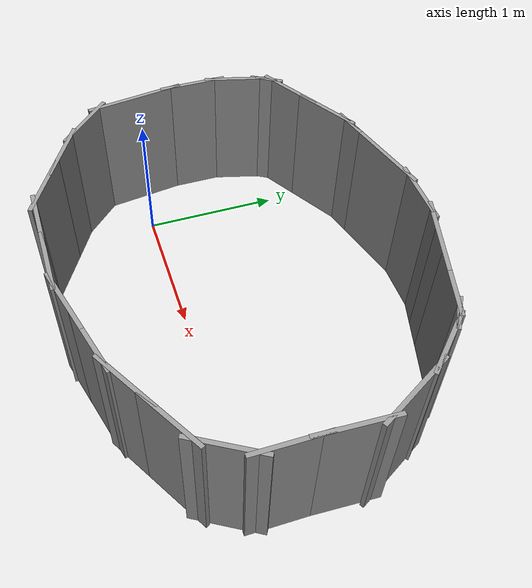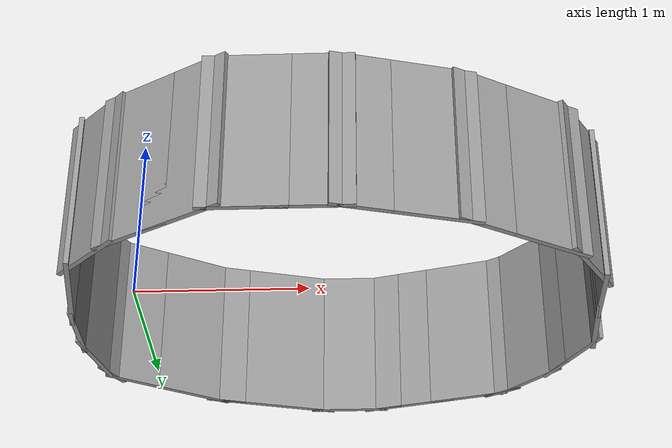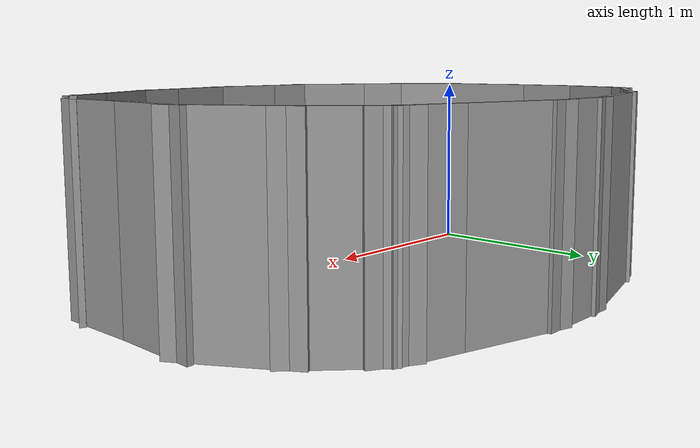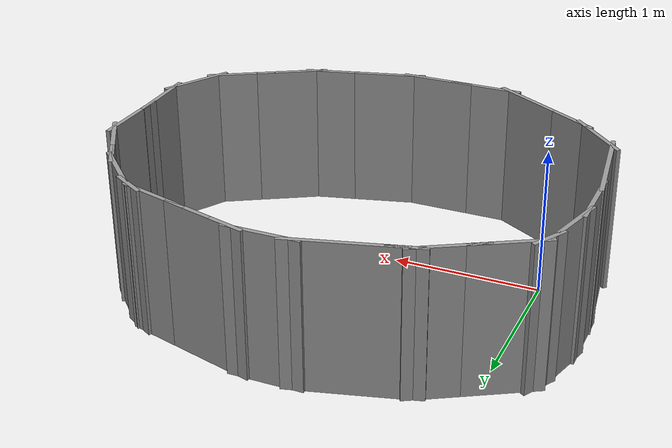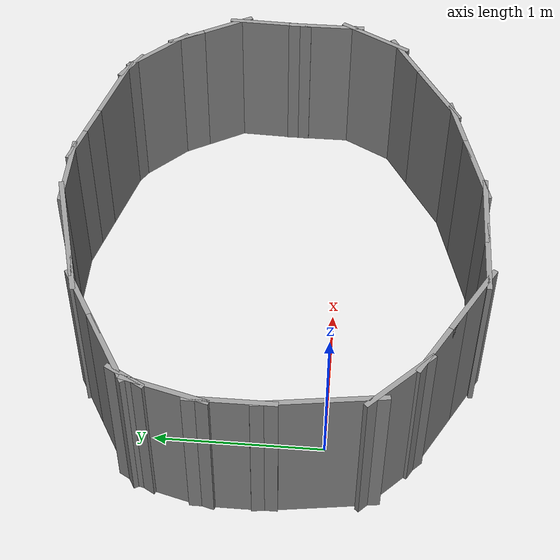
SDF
<?xml version='1.0'?>
<sdf version='1.6'>
  <model name='round'>
    <pose frame=''>1.14 0.38 0 0 -0 0</pose>
    <link name='Wall_20'>
      <collision name='Wall_20_Collision'>
        <geometry>
          <box>
            <size>0.5 0.03 1</size>
          </box>
        </geometry>
        <pose frame=''>0 0 0.5 0 -0 0</pose>
      </collision>
      <visual name='Wall_20_Visual'>
        <pose frame=''>0 0 0.5 0 -0 0</pose>
        <geometry>
          <box>
            <size>0.5 0.03 1</size>
          </box>
        </geometry>
        <material>
          <script>
            <uri>file://media/materials/scripts/gazebo.material</uri>
            <name>Gazebo/Grey</name>
          </script>
          <ambient>1 1 1 1</ambient>
        </material>
        <meta>
          <layer>0</layer>
        </meta>
      </visual>
      <pose frame=''>-1.55769 0.109514 0 0 -0 1.5708</pose>
    </link>
    <link name='Wall_21'>
      <collision name='Wall_21_Collision'>
        <geometry>
          <box>
            <size>0.5 0.03 1</size>
          </box>
        </geometry>
        <pose frame=''>0 0 0.5 0 -0 0</pose>
      </collision>
      <visual name='Wall_21_Visual'>
        <pose frame=''>0 0 0.5 0 -0 0</pose>
        <geometry>
          <box>
            <size>0.5 0.03 1</size>
          </box>
        </geometry>
        <material>
          <script>
            <uri>file://media/materials/scripts/gazebo.material</uri>
            <name>Gazebo/Grey</name>
          </script>
          <ambient>1 1 1 1</ambient>
        </material>
        <meta>
          <layer>0</layer>
        </meta>
      </visual>
      <pose frame=''>-1.5124 0.453551 0 0 -0 1.309</pose>
    </link>
    <link name='Wall_22'>
      <collision name='Wall_22_Collision'>
        <geometry>
          <box>
            <size>0.25 0.03 1</size>
          </box>
        </geometry>
        <pose frame=''>0 0 0.5 0 -0 0</pose>
      </collision>
      <visual name='Wall_22_Visual'>
        <pose frame=''>0 0 0.5 0 -0 0</pose>
        <geometry>
          <box>
            <size>0.25 0.03 1</size>
          </box>
        </geometry>
        <material>
          <script>
            <uri>file://media/materials/scripts/gazebo.material</uri>
            <name>Gazebo/Grey</name>
          </script>
          <ambient>1 1 1 1</ambient>
        </material>
        <meta>
          <layer>0</layer>
        </meta>
      </visual>
      <pose frame=''>-1.4421 0.66589 0 0 -0 1.0472</pose>
    </link>
    <link name='Wall_23'>
      <collision name='Wall_23_Collision'>
        <geometry>
          <box>
            <size>0.5 0.03 1</size>
          </box>
        </geometry>
        <pose frame=''>0 0 0.5 0 -0 0</pose>
      </collision>
      <visual name='Wall_23_Visual'>
        <pose frame=''>0 0 0.5 0 -0 0</pose>
        <geometry>
          <box>
            <size>0.5 0.03 1</size>
          </box>
        </geometry>
        <material>
          <script>
            <uri>file://media/materials/scripts/gazebo.material</uri>
            <name>Gazebo/Grey</name>
          </script>
          <ambient>1 1 1 1</ambient>
        </material>
        <meta>
          <layer>0</layer>
        </meta>
      </visual>
      <pose frame=''>-1.26555 0.796691 0 0 -0 0.523599</pose>
    </link>
    <link name='Wall_24'>
      <collision name='Wall_24_Collision'>
        <geometry>
          <box>
            <size>0.5 0.03 1</size>
          </box>
        </geometry>
        <pose frame=''>0 0 0.5 0 -0 0</pose>
      </collision>
      <visual name='Wall_24_Visual'>
        <pose frame=''>0 0 0.5 0 -0 0</pose>
        <geometry>
          <box>
            <size>0.5 0.03 1</size>
          </box>
        </geometry>
        <material>
          <script>
            <uri>file://media/materials/scripts/gazebo.material</uri>
            <name>Gazebo/Grey</name>
          </script>
          <ambient>1 1 1 1</ambient>
        </material>
        <meta>
          <layer>0</layer>
        </meta>
      </visual>
      <pose frame=''>-0.96244 0.971691 0 0 -0 0.523599</pose>
    </link>
    <link name='Wall_25'>
      <collision name='Wall_25_Collision'>
        <geometry>
          <box>
            <size>0.25 0.03 1</size>
          </box>
        </geometry>
        <pose frame=''>0 0 0.5 0 -0 0</pose>
      </collision>
      <visual name='Wall_25_Visual'>
        <pose frame=''>0 0 0.5 0 -0 0</pose>
        <geometry>
          <box>
            <size>0.25 0.03 1</size>
          </box>
        </geometry>
        <material>
          <script>
            <uri>file://media/materials/scripts/gazebo.material</uri>
            <name>Gazebo/Grey</name>
          </script>
          <ambient>1 1 1 1</ambient>
        </material>
        <meta>
          <layer>0</layer>
        </meta>
      </visual>
      <pose frame=''>-0.762589 1.07213 0 0 -0 0.261799</pose>
    </link>
    <link name='Wall_26'>
      <collision name='Wall_26_Collision'>
        <geometry>
          <box>
            <size>0.75 0.03 1</size>
          </box>
        </geometry>
        <pose frame=''>0 0 0.5 0 -0 0</pose>
      </collision>
      <visual name='Wall_26_Visual'>
        <pose frame=''>0 0 0.5 0 -0 0</pose>
        <geometry>
          <box>
            <size>0.75 0.03 1</size>
          </box>
        </geometry>
        <material>
          <script>
            <uri>file://media/materials/scripts/gazebo.material</uri>
            <name>Gazebo/Grey</name>
          </script>
          <ambient>1 1 1 1</ambient>
        </material>
        <meta>
          <layer>0</layer>
        </meta>
      </visual>
      <pose frame=''>-0.424515 1.16272 0 0 -0 0.261799</pose>
    </link>
    <link name='Wall_27'>
      <collision name='Wall_27_Collision'>
        <geometry>
          <box>
            <size>0.5 0.03 1</size>
          </box>
        </geometry>
        <pose frame=''>0 0 0.5 0 -0 0</pose>
      </collision>
      <visual name='Wall_27_Visual'>
        <pose frame=''>0 0 0.5 0 -0 0</pose>
        <geometry>
          <box>
            <size>0.5 0.03 1</size>
          </box>
        </geometry>
        <material>
          <script>
            <uri>file://media/materials/scripts/gazebo.material</uri>
            <name>Gazebo/Grey</name>
          </script>
          <ambient>1 1 1 1</ambient>
        </material>
        <meta>
          <layer>0</layer>
        </meta>
      </visual>
      <pose frame=''>0.040263 1.24036 0 0 -0 0</pose>
    </link>
    <link name='Wall_28'>
      <collision name='Wall_28_Collision'>
        <geometry>
          <box>
            <size>0.25 0.03 1</size>
          </box>
        </geometry>
        <pose frame=''>0 0 0.5 0 -0 0</pose>
      </collision>
      <visual name='Wall_28_Visual'>
        <pose frame=''>0 0 0.5 0 -0 0</pose>
        <geometry>
          <box>
            <size>0.25 0.03 1</size>
          </box>
        </geometry>
        <material>
          <script>
            <uri>file://media/materials/scripts/gazebo.material</uri>
            <name>Gazebo/Grey</name>
          </script>
          <ambient>1 1 1 1</ambient>
        </material>
        <meta>
          <layer>0</layer>
        </meta>
      </visual>
      <pose frame=''>0.263559 1.22742 0 0 0 -0.261799</pose>
    </link>
    <link name='Wall_29'>
      <collision name='Wall_29_Collision'>
        <geometry>
          <box>
            <size>0.5 0.03 1</size>
          </box>
        </geometry>
        <pose frame=''>0 0 0.5 0 -0 0</pose>
      </collision>
      <visual name='Wall_29_Visual'>
        <pose frame=''>0 0 0.5 0 -0 0</pose>
        <geometry>
          <box>
            <size>0.5 0.03 1</size>
          </box>
        </geometry>
        <material>
          <script>
            <uri>file://media/materials/scripts/gazebo.material</uri>
            <name>Gazebo/Grey</name>
          </script>
          <ambient>1 1 1 1</ambient>
        </material>
        <meta>
          <layer>0</layer>
        </meta>
      </visual>
      <pose frame=''>0.480893 1.16919 0 0 0 -0.261799</pose>
    </link>
    <link name='Wall_30'>
      <collision name='Wall_30_Collision'>
        <geometry>
          <box>
            <size>0.5 0.03 1</size>
          </box>
        </geometry>
        <pose frame=''>0 0 0.5 0 -0 0</pose>
      </collision>
      <visual name='Wall_30_Visual'>
        <pose frame=''>0 0 0.5 0 -0 0</pose>
        <geometry>
          <box>
            <size>0.5 0.03 1</size>
          </box>
        </geometry>
        <material>
          <script>
            <uri>file://media/materials/scripts/gazebo.material</uri>
            <name>Gazebo/Grey</name>
          </script>
          <ambient>1 1 1 1</ambient>
        </material>
        <meta>
          <layer>0</layer>
        </meta>
      </visual>
      <pose frame=''>0.818967 1.0786 0 0 0 -0.261799</pose>
    </link>
    <link name='Wall_31'>
      <collision name='Wall_31_Collision'>
        <geometry>
          <box>
            <size>0.25 0.03 1</size>
          </box>
        </geometry>
        <pose frame=''>0 0 0.5 0 -0 0</pose>
      </collision>
      <visual name='Wall_31_Visual'>
        <pose frame=''>0 0 0.5 0 -0 0</pose>
        <geometry>
          <box>
            <size>0.25 0.03 1</size>
          </box>
        </geometry>
        <material>
          <script>
            <uri>file://media/materials/scripts/gazebo.material</uri>
            <name>Gazebo/Grey</name>
          </script>
          <ambient>1 1 1 1</ambient>
        </material>
        <meta>
          <layer>0</layer>
        </meta>
      </visual>
      <pose frame=''>1.0313 1.00831 0 0 0 -0.523599</pose>
    </link>
    <link name='Wall_32'>
      <collision name='Wall_32_Collision'>
        <geometry>
          <box>
            <size>0.5 0.03 1</size>
          </box>
        </geometry>
        <pose frame=''>0 0 0.5 0 -0 0</pose>
      </collision>
      <visual name='Wall_32_Visual'>
        <pose frame=''>0 0 0.5 0 -0 0</pose>
        <geometry>
          <box>
            <size>0.5 0.03 1</size>
          </box>
        </geometry>
        <material>
          <script>
            <uri>file://media/materials/scripts/gazebo.material</uri>
            <name>Gazebo/Grey</name>
          </script>
          <ambient>1 1 1 1</ambient>
        </material>
        <meta>
          <layer>0</layer>
        </meta>
      </visual>
      <pose frame=''>1.19835 0.859565 0 0 0 -0.785398</pose>
    </link>
    <link name='Wall_33'>
      <collision name='Wall_33_Collision'>
        <geometry>
          <box>
            <size>0.25 0.03 1</size>
          </box>
        </geometry>
        <pose frame=''>0 0 0.5 0 -0 0</pose>
      </collision>
      <visual name='Wall_33_Visual'>
        <pose frame=''>0 0 0.5 0 -0 0</pose>
        <geometry>
          <box>
            <size>0.25 0.03 1</size>
          </box>
        </geometry>
        <material>
          <script>
            <uri>file://media/materials/scripts/gazebo.material</uri>
            <name>Gazebo/Grey</name>
          </script>
          <ambient>1 1 1 1</ambient>
        </material>
        <meta>
          <layer>0</layer>
        </meta>
      </visual>
      <pose frame=''>1.34709 0.69252 0 0 0 -1.0472</pose>
    </link>
    <link name='Wall_34'>
      <collision name='Wall_34_Collision'>
        <geometry>
          <box>
            <size>0.5 0.03 1</size>
          </box>
        </geometry>
        <pose frame=''>0 0 0.5 0 -0 0</pose>
      </collision>
      <visual name='Wall_34_Visual'>
        <pose frame=''>0 0 0.5 0 -0 0</pose>
        <geometry>
          <box>
            <size>0.5 0.03 1</size>
          </box>
        </geometry>
        <material>
          <script>
            <uri>file://media/materials/scripts/gazebo.material</uri>
            <name>Gazebo/Grey</name>
          </script>
          <ambient>1 1 1 1</ambient>
        </material>
        <meta>
          <layer>0</layer>
        </meta>
      </visual>
      <pose frame=''>1.45959 0.497665 0 0 0 -1.0472</pose>
    </link>
    <link name='Wall_35'>
      <collision name='Wall_35_Collision'>
        <geometry>
          <box>
            <size>0.541875 0.03 1</size>
          </box>
        </geometry>
        <pose frame=''>0 0 0.5 0 -0 0</pose>
      </collision>
      <visual name='Wall_35_Visual'>
        <pose frame=''>0 0 0.5 0 -0 0</pose>
        <geometry>
          <box>
            <size>0.541875 0.03 1</size>
          </box>
        </geometry>
        <material>
          <script>
            <uri>file://media/materials/scripts/gazebo.material</uri>
            <name>Gazebo/Grey</name>
          </script>
          <ambient>1 1 1 1</ambient>
        </material>
        <meta>
          <layer>0</layer>
        </meta>
      </visual>
      <pose frame=''>1.5397 0.150312 0 0 0 -1.60853</pose>
    </link>
    <link name='Wall_36'>
      <collision name='Wall_36_Collision'>
        <geometry>
          <box>
            <size>0.5 0.03 1</size>
          </box>
        </geometry>
        <pose frame=''>0 0 0.5 0 -0 0</pose>
      </collision>
      <visual name='Wall_36_Visual'>
        <pose frame=''>0 0 0.5 0 -0 0</pose>
        <geometry>
          <box>
            <size>0.5 0.03 1</size>
          </box>
        </geometry>
        <material>
          <script>
            <uri>file://media/materials/scripts/gazebo.material</uri>
            <name>Gazebo/Grey</name>
          </script>
          <ambient>1 1 1 1</ambient>
        </material>
        <meta>
          <layer>0</layer>
        </meta>
      </visual>
      <pose frame=''>1.53231 -0.220486 0 0 0 -1.5708</pose>
    </link>
    <link name='Wall_37'>
      <collision name='Wall_37_Collision'>
        <geometry>
          <box>
            <size>0.5 0.03 1</size>
          </box>
        </geometry>
        <pose frame=''>0 0 0.5 0 -0 0</pose>
      </collision>
      <visual name='Wall_37_Visual'>
        <pose frame=''>0 0 0.5 0 -0 0</pose>
        <geometry>
          <box>
            <size>0.5 0.03 1</size>
          </box>
        </geometry>
        <material>
          <script>
            <uri>file://media/materials/scripts/gazebo.material</uri>
            <name>Gazebo/Grey</name>
          </script>
          <ambient>1 1 1 1</ambient>
        </material>
        <meta>
          <layer>0</layer>
        </meta>
      </visual>
      <pose frame=''>1.44481 -0.54704 0 0 0 -2.0944</pose>
    </link>
    <link name='Wall_38'>
      <collision name='Wall_38_Collision'>
        <geometry>
          <box>
            <size>0.5 0.03 1</size>
          </box>
        </geometry>
        <pose frame=''>0 0 0.5 0 -0 0</pose>
      </collision>
      <visual name='Wall_38_Visual'>
        <pose frame=''>0 0 0.5 0 -0 0</pose>
        <geometry>
          <box>
            <size>0.5 0.03 1</size>
          </box>
        </geometry>
        <material>
          <script>
            <uri>file://media/materials/scripts/gazebo.material</uri>
            <name>Gazebo/Grey</name>
          </script>
          <ambient>1 1 1 1</ambient>
        </material>
        <meta>
          <layer>0</layer>
        </meta>
      </visual>
      <pose frame=''>1.20576 -0.786095 0 0 0 -2.61799</pose>
    </link>
    <link name='Wall_39'>
      <collision name='Wall_39_Collision'>
        <geometry>
          <box>
            <size>0.5 0.03 1</size>
          </box>
        </geometry>
        <pose frame=''>0 0 0.5 0 -0 0</pose>
      </collision>
      <visual name='Wall_39_Visual'>
        <pose frame=''>0 0 0.5 0 -0 0</pose>
        <geometry>
          <box>
            <size>0.5 0.03 1</size>
          </box>
        </geometry>
        <material>
          <script>
            <uri>file://media/materials/scripts/gazebo.material</uri>
            <name>Gazebo/Grey</name>
          </script>
          <ambient>1 1 1 1</ambient>
        </material>
        <meta>
          <layer>0</layer>
        </meta>
      </visual>
      <pose frame=''>0.902647 -0.961095 0 0 0 -2.61799</pose>
    </link>
    <link name='Wall_40'>
      <collision name='Wall_40_Collision'>
        <geometry>
          <box>
            <size>0.5 0.03 1</size>
          </box>
        </geometry>
        <pose frame=''>0 0 0.5 0 -0 0</pose>
      </collision>
      <visual name='Wall_40_Visual'>
        <pose frame=''>0 0 0.5 0 -0 0</pose>
        <geometry>
          <box>
            <size>0.5 0.03 1</size>
          </box>
        </geometry>
        <material>
          <script>
            <uri>file://media/materials/scripts/gazebo.material</uri>
            <name>Gazebo/Grey</name>
          </script>
          <ambient>1 1 1 1</ambient>
        </material>
        <meta>
          <layer>0</layer>
        </meta>
      </visual>
      <pose frame=''>0.582056 -1.09389 0 0 0 -2.87979</pose>
    </link>
    <link name='Wall_41'>
      <collision name='Wall_41_Collision'>
        <geometry>
          <box>
            <size>0.5 0.03 1</size>
          </box>
        </geometry>
        <pose frame=''>0 0 0.5 0 -0 0</pose>
      </collision>
      <visual name='Wall_41_Visual'>
        <pose frame=''>0 0 0.5 0 -0 0</pose>
        <geometry>
          <box>
            <size>0.5 0.03 1</size>
          </box>
        </geometry>
        <material>
          <script>
            <uri>file://media/materials/scripts/gazebo.material</uri>
            <name>Gazebo/Grey</name>
          </script>
          <ambient>1 1 1 1</ambient>
        </material>
        <meta>
          <layer>0</layer>
        </meta>
      </visual>
      <pose frame=''>0.243982 -1.18447 0 0 0 -2.87979</pose>
    </link>
    <link name='Wall_42'>
      <collision name='Wall_42_Collision'>
        <geometry>
          <box>
            <size>0.5 0.03 1</size>
          </box>
        </geometry>
        <pose frame=''>0 0 0.5 0 -0 0</pose>
      </collision>
      <visual name='Wall_42_Visual'>
        <pose frame=''>0 0 0.5 0 -0 0</pose>
        <geometry>
          <box>
            <size>0.5 0.03 1</size>
          </box>
        </geometry>
        <material>
          <script>
            <uri>file://media/materials/scripts/gazebo.material</uri>
            <name>Gazebo/Grey</name>
          </script>
          <ambient>1 1 1 1</ambient>
        </material>
        <meta>
          <layer>0</layer>
        </meta>
      </visual>
      <pose frame=''>-0.100055 -1.22977 0 0 -0 3.14159</pose>
    </link>
    <link name='Wall_43'>
      <collision name='Wall_43_Collision'>
        <geometry>
          <box>
            <size>0.5 0.03 1</size>
          </box>
        </geometry>
        <pose frame=''>0 0 0.5 0 -0 0</pose>
      </collision>
      <visual name='Wall_43_Visual'>
        <pose frame=''>0 0 0.5 0 -0 0</pose>
        <geometry>
          <box>
            <size>0.5 0.03 1</size>
          </box>
        </geometry>
        <material>
          <script>
            <uri>file://media/materials/scripts/gazebo.material</uri>
            <name>Gazebo/Grey</name>
          </script>
          <ambient>1 1 1 1</ambient>
        </material>
        <meta>
          <layer>0</layer>
        </meta>
      </visual>
      <pose frame=''>-0.450055 -1.22977 0 0 -0 3.14159</pose>
    </link>
    <link name='Wall_44'>
      <collision name='Wall_44_Collision'>
        <geometry>
          <box>
            <size>0.5 0.03 1</size>
          </box>
        </geometry>
        <pose frame=''>0 0 0.5 0 -0 0</pose>
      </collision>
      <visual name='Wall_44_Visual'>
        <pose frame=''>0 0 0.5 0 -0 0</pose>
        <geometry>
          <box>
            <size>0.5 0.03 1</size>
          </box>
        </geometry>
        <material>
          <script>
            <uri>file://media/materials/scripts/gazebo.material</uri>
            <name>Gazebo/Grey</name>
          </script>
          <ambient>1 1 1 1</ambient>
        </material>
        <meta>
          <layer>0</layer>
        </meta>
      </visual>
      <pose frame=''>-0.77661 -1.14227 0 0 -0 2.61799</pose>
    </link>
    <link name='Wall_45'>
      <collision name='Wall_45_Collision'>
        <geometry>
          <box>
            <size>0.5 0.03 1</size>
          </box>
        </geometry>
        <pose frame=''>0 0 0.5 0 -0 0</pose>
      </collision>
      <visual name='Wall_45_Visual'>
        <pose frame=''>0 0 0.5 0 -0 0</pose>
        <geometry>
          <box>
            <size>0.5 0.03 1</size>
          </box>
        </geometry>
        <material>
          <script>
            <uri>file://media/materials/scripts/gazebo.material</uri>
            <name>Gazebo/Grey</name>
          </script>
          <ambient>1 1 1 1</ambient>
        </material>
        <meta>
          <layer>0</layer>
        </meta>
      </visual>
      <pose frame=''>-1.07972 -0.967268 0 0 -0 2.61799</pose>
    </link>
    <link name='Wall_46'>
      <collision name='Wall_46_Collision'>
        <geometry>
          <box>
            <size>0.5 0.03 1</size>
          </box>
        </geometry>
        <pose frame=''>0 0 0.5 0 -0 0</pose>
      </collision>
      <visual name='Wall_46_Visual'>
        <pose frame=''>0 0 0.5 0 -0 0</pose>
        <geometry>
          <box>
            <size>0.5 0.03 1</size>
          </box>
        </geometry>
        <material>
          <script>
            <uri>file://media/materials/scripts/gazebo.material</uri>
            <name>Gazebo/Grey</name>
          </script>
          <ambient>1 1 1 1</ambient>
        </material>
        <meta>
          <layer>0</layer>
        </meta>
      </visual>
      <pose frame=''>-1.35502 -0.756024 0 0 -0 2.35619</pose>
    </link>
    <link name='Wall_47'>
      <collision name='Wall_47_Collision'>
        <geometry>
          <box>
            <size>0.722264 0.03 1</size>
          </box>
        </geometry>
        <pose frame=''>0 0 0.5 0 -0 0</pose>
      </collision>
      <visual name='Wall_47_Visual'>
        <pose frame=''>0 0 0.5 0 -0 0</pose>
        <geometry>
          <box>
            <size>0.722264 0.03 1</size>
          </box>
        </geometry>
        <material>
          <script>
            <uri>file://media/materials/scripts/gazebo.material</uri>
            <name>Gazebo/Grey</name>
          </script>
          <ambient>1 1 1 1</ambient>
        </material>
        <meta>
          <layer>0</layer>
        </meta>
      </visual>
      <pose frame=''>-1.51822 -0.348883 0 0 -0 1.70916</pose>
    </link>
    <static>1</static>
  </model>
</sdf>
